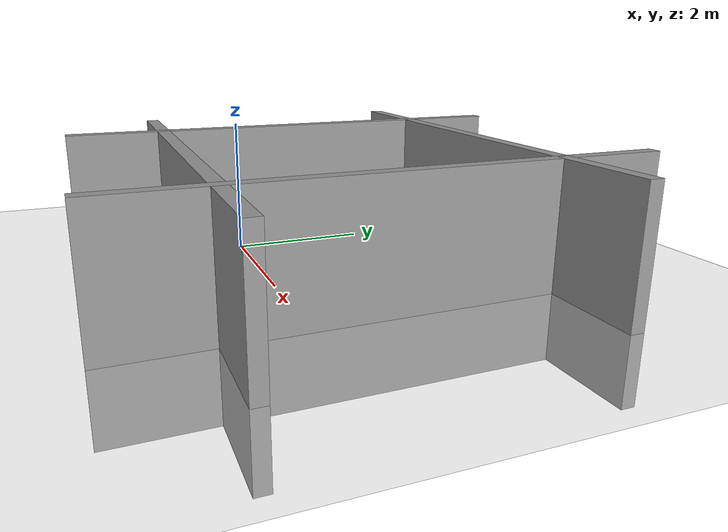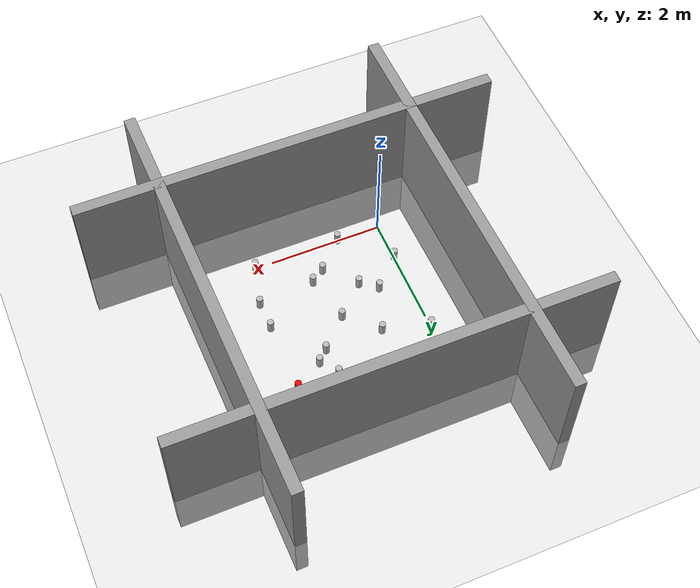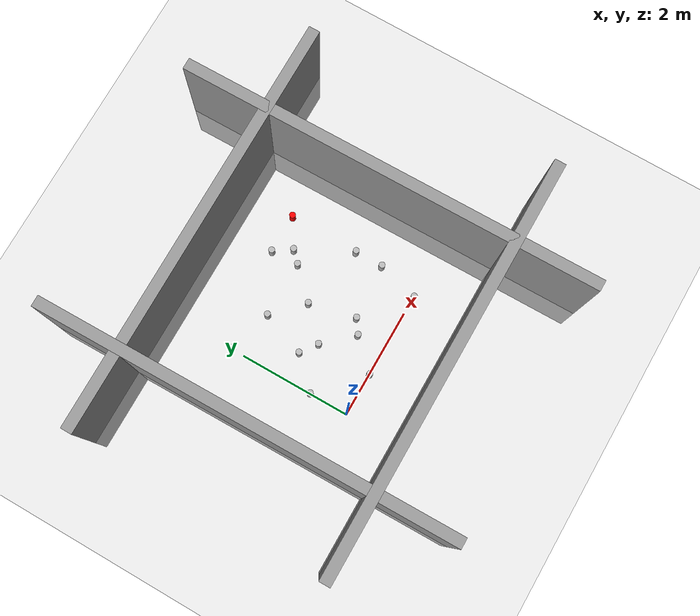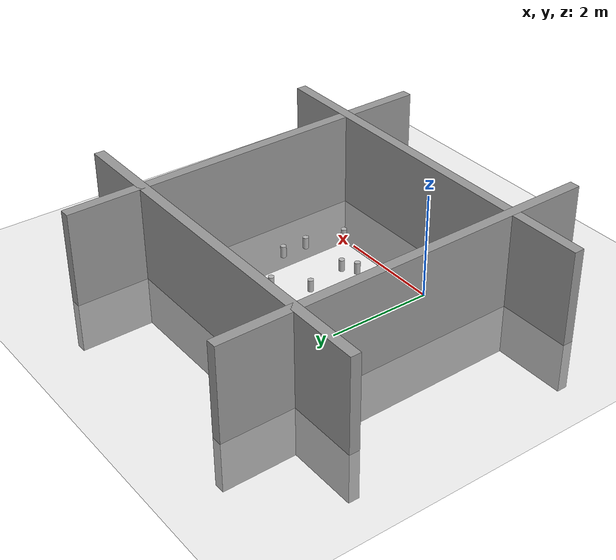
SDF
<sdf version="1.6">
 <world name="default">
  <light name="sun" type="directional">
   <pose>0 0 10 0 -0 0</pose>
   <diffuse>0.8 0.8 0.8 1</diffuse>
   <specular>0.1 0.1 0.1 1</specular>
   <attenuation>
    <range>1000</range>
    <constant>0.9</constant>
    <linear>0.01</linear>
    <quadratic>0.001</quadratic>
   </attenuation>
   <direction>-0.5 0.5 -1</direction>
  </light>
  <model name="ground_plane">
   <static>1</static>
   <link name="link">
    <collision name="collision">
     <geometry><plane><normal>0 0 1</normal><size>100 100</size></plane></geometry>
     <surface><friction><ode><mu>100</mu><mu2>50</mu2></ode></friction></surface>
    </collision>
    <visual name="visual">
     <cast_shadows>0</cast_shadows>
     <geometry><plane><normal>0 0 1</normal><size>100 100</size></plane></geometry>
     <material>
      <script><uri>file://media/materials/scripts/gazebo.material</uri><name>Gazebo/Grey</name></script>
     </material>
    </visual>
   </link>
  </model>
  <gravity>0 0 -9.8</gravity>
  <magnetic_field>6e-06 2.3e-05 -4.2e-05</magnetic_field>
  <atmosphere type="adiabatic"/>
  <physics name="default_physics" default="0" type="ode">
   <max_step_size>0.001</max_step_size>
   <real_time_factor>1</real_time_factor>
   <real_time_update_rate>1000</real_time_update_rate>
  </physics>
  <scene><ambient>0.4 0.4 0.4 1</ambient><background>0.7 0.7 0.7 1</background><shadows>1</shadows></scene>
  <spherical_coordinates>
   <surface_model>EARTH_WGS84</surface_model>
   <latitude_deg>0</latitude_deg>
   <longitude_deg>0</longitude_deg>
   <elevation>0</elevation>
   <heading_deg>0</heading_deg>
  </spherical_coordinates>
  <model name="goal">
   <link name="link">
    <pose>0 0 0.115 0 -0 0</pose>
    <inertial>
     <mass>0.0005</mass>
     <inertia><ixx>0.00058</ixx><ixy>0</ixy><ixz>0</ixz><iyy>0.00058</iyy><iyz>0</iyz><izz>0.00019</izz></inertia>
    </inertial>
    <visual name="visual">
     <geometry><cylinder><radius>0.055</radius><length>0.23</length></cylinder></geometry>
     <material>
      <script>
       <uri>model://beer/materials/scripts</uri>
       <uri>model://beer/materials/textures</uri>
       <name>Beer/Diffuse</name>
      </script>
      <ambient>1 0 0 1</ambient>
      <diffuse>1 0 0 1</diffuse>
      <specular>0 0 0 1</specular>
      <emissive>0 0 0 1</emissive>
      <shader type="vertex"><normal_map>__default__</normal_map></shader>
     </material>
    </visual>
    <collision name="collision">
     <geometry><cylinder><radius>0.055</radius><length>0.23</length></cylinder></geometry>
     <surface>
      <friction>
       <ode><mu>1</mu><mu2>1</mu2><fdir1>0 0 0</fdir1><slip1>0</slip1><slip2>0</slip2></ode>
       <torsional>
        <coefficient>1</coefficient>
        <patch_radius>0</patch_radius>
        <surface_radius>0</surface_radius>
        <use_patch_radius>1</use_patch_radius>
        <ode><slip>0</slip></ode>
       </torsional>
      </friction>
      <bounce><restitution_coefficient>0</restitution_coefficient><threshold>1e+06</threshold></bounce>
      <contact>
       <collide_without_contact>0</collide_without_contact>
       <collide_without_contact_bitmask>1</collide_without_contact_bitmask>
       <collide_bitmask>1</collide_bitmask>
       <ode>
        <soft_cfm>0</soft_cfm>
        <soft_erp>0.2</soft_erp>
        <kp>1e+13</kp>
        <kd>1</kd>
        <max_vel>0.01</max_vel>
        <min_depth>0</min_depth>
       </ode>
       <bullet>
        <split_impulse>1</split_impulse>
        <split_impulse_penetration_threshold>-0.01</split_impulse_penetration_threshold>
        <soft_cfm>0</soft_cfm>
        <soft_erp>0.2</soft_erp>
        <kp>1e+13</kp>
        <kd>1</kd>
       </bullet>
      </contact>
     </surface>
    </collision>
   </link>
   <static>0</static>
   <pose>2.5 2.5 -9e-06 -1e-06 -4e-06 0</pose>
  </model>
  <model name="wall1">
   <static>1</static>
   <link name="link">
    <pose>0 0 0.42 0 -0 0</pose>
    <collision name="collision"><geometry><box><size>7.5 0.2 2.8</size></box></geometry></collision>
    <visual name="visual">
     <cast_shadows>0</cast_shadows>
     <geometry><box><size>7.5 0.2 2.8</size></box></geometry>
     <material>
      <script>
       <uri>model://grey_wall/materials/scripts</uri>
       <uri>model://grey_wall/materials/textures</uri>
       <name>vrc/grey_wall</name>
      </script>
     </material>
    </visual>
   </link>
   <pose>-1 1.25 0 0 -0 -1.55905</pose>
  </model>
  <model name="wall2">
   <static>1</static>
   <link name="link">
    <pose>0 0 0.42 0 -0 0</pose>
    <collision name="collision"><geometry><box><size>7.5 0.2 2.8</size></box></geometry></collision>
    <visual name="visual">
     <cast_shadows>0</cast_shadows>
     <geometry><box><size>7.5 0.2 2.8</size></box></geometry>
     <material>
      <script>
       <uri>model://grey_wall/materials/scripts</uri>
       <uri>model://grey_wall/materials/textures</uri>
       <name>vrc/grey_wall</name>
      </script>
     </material>
    </visual>
   </link>
   <pose>1.25 3.5 0 0 -0 0</pose>
  </model>
  <model name="wall3">
   <static>1</static>
   <link name="link">
    <pose>0 0 0.42 0 -0 0</pose>
    <collision name="collision"><geometry><box><size>7.5 0.2 2.8</size></box></geometry></collision>
    <visual name="visual">
     <cast_shadows>0</cast_shadows>
     <geometry><box><size>7.5 0.2 2.8</size></box></geometry>
     <material>
      <script>
       <uri>model://grey_wall/materials/scripts</uri>
       <uri>model://grey_wall/materials/textures</uri>
       <name>vrc/grey_wall</name>
      </script>
     </material>
    </visual>
   </link>
   <pose>3.5 1.25 0 0 -0 -1.55905</pose>
  </model>
  <model name="wall4">
   <static>1</static>
   <link name="link">
    <pose>0 0 0.42 0 -0 0</pose>
    <collision name="collision"><geometry><box><size>7.5 0.2 2.8</size></box></geometry></collision>
    <visual name="visual">
     <cast_shadows>0</cast_shadows>
     <geometry><box><size>7.5 0.2 2.8</size></box></geometry>
     <material>
      <script>
       <uri>model://grey_wall/materials/scripts</uri>
       <uri>model://grey_wall/materials/textures</uri>
       <name>vrc/grey_wall</name>
      </script>
     </material>
    </visual>
   </link>
   <pose>1.25 -1 0 0 -0 0</pose>
  </model>
  <model name="can1.311518367991.5">
   <link name="link">
    <pose>0 0 0.115 0 -0 0</pose>
    <inertial>
     <mass>0.39</mass>
     <inertia><ixx>0.00058</ixx><ixy>0</ixy><ixz>0</ixz><iyy>0.00058</iyy><iyz>0</iyz><izz>0.00019</izz></inertia>
    </inertial>
    <collision name="collision">
     <geometry><cylinder><radius>0.055</radius><length>0.23</length></cylinder></geometry>
    </collision>
    <visual name="visual">
     <geometry><cylinder><radius>0.055</radius><length>0.23</length></cylinder></geometry>
     <material>
      <script>
       <uri>model://beer/materials/scripts</uri>
       <uri>model://beer/materials/textures</uri>
       <name>Beer/Diffuse</name>
      </script>
     </material>
    </visual>
   </link>
   <pose>1.31151836799 1.5 -2e-06 1e-06 0 -9.5e-05</pose>
  </model>
  <model name="can2.02.18873067357">
   <link name="link">
    <pose>0 0 0.115 0 -0 0</pose>
    <inertial>
     <mass>0.39</mass>
     <inertia><ixx>0.00058</ixx><ixy>0</ixy><ixz>0</ixz><iyy>0.00058</iyy><iyz>0</iyz><izz>0.00019</izz></inertia>
    </inertial>
    <collision name="collision">
     <geometry><cylinder><radius>0.055</radius><length>0.23</length></cylinder></geometry>
    </collision>
    <visual name="visual">
     <geometry><cylinder><radius>0.055</radius><length>0.23</length></cylinder></geometry>
     <material>
      <script>
       <uri>model://beer/materials/scripts</uri>
       <uri>model://beer/materials/textures</uri>
       <name>Beer/Diffuse</name>
      </script>
     </material>
    </visual>
   </link>
   <pose>2.0 2.18873067357 -2e-06 1e-06 0 -9.5e-05</pose>
  </model>
  <model name="can0.51.21046722944">
   <link name="link">
    <pose>0 0 0.115 0 -0 0</pose>
    <inertial>
     <mass>0.39</mass>
     <inertia><ixx>0.00058</ixx><ixy>0</ixy><ixz>0</ixz><iyy>0.00058</iyy><iyz>0</iyz><izz>0.00019</izz></inertia>
    </inertial>
    <collision name="collision">
     <geometry><cylinder><radius>0.055</radius><length>0.23</length></cylinder></geometry>
    </collision>
    <visual name="visual">
     <geometry><cylinder><radius>0.055</radius><length>0.23</length></cylinder></geometry>
     <material>
      <script>
       <uri>model://beer/materials/scripts</uri>
       <uri>model://beer/materials/textures</uri>
       <name>Beer/Diffuse</name>
      </script>
     </material>
    </visual>
   </link>
   <pose>0.5 1.21046722944 -2e-06 1e-06 0 -9.5e-05</pose>
  </model>
  <model name="can0.02.22798874616">
   <link name="link">
    <pose>0 0 0.115 0 -0 0</pose>
    <inertial>
     <mass>0.39</mass>
     <inertia><ixx>0.00058</ixx><ixy>0</ixy><ixz>0</ixz><iyy>0.00058</iyy><iyz>0</iyz><izz>0.00019</izz></inertia>
    </inertial>
    <collision name="collision">
     <geometry><cylinder><radius>0.055</radius><length>0.23</length></cylinder></geometry>
    </collision>
    <visual name="visual">
     <geometry><cylinder><radius>0.055</radius><length>0.23</length></cylinder></geometry>
     <material>
      <script>
       <uri>model://beer/materials/scripts</uri>
       <uri>model://beer/materials/textures</uri>
       <name>Beer/Diffuse</name>
      </script>
     </material>
    </visual>
   </link>
   <pose>0.0 2.22798874616 -2e-06 1e-06 0 -9.5e-05</pose>
  </model>
  <model name="can1.790154206242.5">
   <link name="link">
    <pose>0 0 0.115 0 -0 0</pose>
    <inertial>
     <mass>0.39</mass>
     <inertia><ixx>0.00058</ixx><ixy>0</ixy><ixz>0</ixz><iyy>0.00058</iyy><iyz>0</iyz><izz>0.00019</izz></inertia>
    </inertial>
    <collision name="collision">
     <geometry><cylinder><radius>0.055</radius><length>0.23</length></cylinder></geometry>
    </collision>
    <visual name="visual">
     <geometry><cylinder><radius>0.055</radius><length>0.23</length></cylinder></geometry>
     <material>
      <script>
       <uri>model://beer/materials/scripts</uri>
       <uri>model://beer/materials/textures</uri>
       <name>Beer/Diffuse</name>
      </script>
     </material>
    </visual>
   </link>
   <pose>1.79015420624 2.5 -2e-06 1e-06 0 -9.5e-05</pose>
  </model>
  <model name="can2.50.737276166184">
   <link name="link">
    <pose>0 0 0.115 0 -0 0</pose>
    <inertial>
     <mass>0.39</mass>
     <inertia><ixx>0.00058</ixx><ixy>0</ixy><ixz>0</ixz><iyy>0.00058</iyy><iyz>0</iyz><izz>0.00019</izz></inertia>
    </inertial>
    <collision name="collision">
     <geometry><cylinder><radius>0.055</radius><length>0.23</length></cylinder></geometry>
    </collision>
    <visual name="visual">
     <geometry><cylinder><radius>0.055</radius><length>0.23</length></cylinder></geometry>
     <material>
      <script>
       <uri>model://beer/materials/scripts</uri>
       <uri>model://beer/materials/textures</uri>
       <name>Beer/Diffuse</name>
      </script>
     </material>
    </visual>
   </link>
   <pose>2.5 0.737276166184 -2e-06 1e-06 0 -9.5e-05</pose>
  </model>
  <model name="can0.7944484413012.0">
   <link name="link">
    <pose>0 0 0.115 0 -0 0</pose>
    <inertial>
     <mass>0.39</mass>
     <inertia><ixx>0.00058</ixx><ixy>0</ixy><ixz>0</ixz><iyy>0.00058</iyy><iyz>0</iyz><izz>0.00019</izz></inertia>
    </inertial>
    <collision name="collision">
     <geometry><cylinder><radius>0.055</radius><length>0.23</length></cylinder></geometry>
    </collision>
    <visual name="visual">
     <geometry><cylinder><radius>0.055</radius><length>0.23</length></cylinder></geometry>
     <material>
      <script>
       <uri>model://beer/materials/scripts</uri>
       <uri>model://beer/materials/textures</uri>
       <name>Beer/Diffuse</name>
      </script>
     </material>
    </visual>
   </link>
   <pose>0.794448441301 2.0 -2e-06 1e-06 0 -9.5e-05</pose>
  </model>
  <model name="can0.00.704023072202">
   <link name="link">
    <pose>0 0 0.115 0 -0 0</pose>
    <inertial>
     <mass>0.39</mass>
     <inertia><ixx>0.00058</ixx><ixy>0</ixy><ixz>0</ixz><iyy>0.00058</iyy><iyz>0</iyz><izz>0.00019</izz></inertia>
    </inertial>
    <collision name="collision">
     <geometry><cylinder><radius>0.055</radius><length>0.23</length></cylinder></geometry>
    </collision>
    <visual name="visual">
     <geometry><cylinder><radius>0.055</radius><length>0.23</length></cylinder></geometry>
     <material>
      <script>
       <uri>model://beer/materials/scripts</uri>
       <uri>model://beer/materials/textures</uri>
       <name>Beer/Diffuse</name>
      </script>
     </material>
    </visual>
   </link>
   <pose>0.0 0.704023072202 -2e-06 1e-06 0 -9.5e-05</pose>
  </model>
  <model name="can2.51.24374151113">
   <link name="link">
    <pose>0 0 0.115 0 -0 0</pose>
    <inertial>
     <mass>0.39</mass>
     <inertia><ixx>0.00058</ixx><ixy>0</ixy><ixz>0</ixz><iyy>0.00058</iyy><iyz>0</iyz><izz>0.00019</izz></inertia>
    </inertial>
    <collision name="collision">
     <geometry><cylinder><radius>0.055</radius><length>0.23</length></cylinder></geometry>
    </collision>
    <visual name="visual">
     <geometry><cylinder><radius>0.055</radius><length>0.23</length></cylinder></geometry>
     <material>
      <script>
       <uri>model://beer/materials/scripts</uri>
       <uri>model://beer/materials/textures</uri>
       <name>Beer/Diffuse</name>
      </script>
     </material>
    </visual>
   </link>
   <pose>2.5 1.24374151113 -2e-06 1e-06 0 -9.5e-05</pose>
  </model>
  <model name="can1.807581573262.0">
   <link name="link">
    <pose>0 0 0.115 0 -0 0</pose>
    <inertial>
     <mass>0.39</mass>
     <inertia><ixx>0.00058</ixx><ixy>0</ixy><ixz>0</ixz><iyy>0.00058</iyy><iyz>0</iyz><izz>0.00019</izz></inertia>
    </inertial>
    <collision name="collision">
     <geometry><cylinder><radius>0.055</radius><length>0.23</length></cylinder></geometry>
    </collision>
    <visual name="visual">
     <geometry><cylinder><radius>0.055</radius><length>0.23</length></cylinder></geometry>
     <material>
      <script>
       <uri>model://beer/materials/scripts</uri>
       <uri>model://beer/materials/textures</uri>
       <name>Beer/Diffuse</name>
      </script>
     </material>
    </visual>
   </link>
   <pose>1.80758157326 2.0 -2e-06 1e-06 0 -9.5e-05</pose>
  </model>
  <model name="can0.7740163140330.0">
   <link name="link">
    <pose>0 0 0.115 0 -0 0</pose>
    <inertial>
     <mass>0.39</mass>
     <inertia><ixx>0.00058</ixx><ixy>0</ixy><ixz>0</ixz><iyy>0.00058</iyy><iyz>0</iyz><izz>0.00019</izz></inertia>
    </inertial>
    <collision name="collision">
     <geometry><cylinder><radius>0.055</radius><length>0.23</length></cylinder></geometry>
    </collision>
    <visual name="visual">
     <geometry><cylinder><radius>0.055</radius><length>0.23</length></cylinder></geometry>
     <material>
      <script>
       <uri>model://beer/materials/scripts</uri>
       <uri>model://beer/materials/textures</uri>
       <name>Beer/Diffuse</name>
      </script>
     </material>
    </visual>
   </link>
   <pose>0.774016314033 0.0 -2e-06 1e-06 0 -9.5e-05</pose>
  </model>
  <model name="can2.30359641110.0">
   <link name="link">
    <pose>0 0 0.115 0 -0 0</pose>
    <inertial>
     <mass>0.39</mass>
     <inertia><ixx>0.00058</ixx><ixy>0</ixy><ixz>0</ixz><iyy>0.00058</iyy><iyz>0</iyz><izz>0.00019</izz></inertia>
    </inertial>
    <collision name="collision">
     <geometry><cylinder><radius>0.055</radius><length>0.23</length></cylinder></geometry>
    </collision>
    <visual name="visual">
     <geometry><cylinder><radius>0.055</radius><length>0.23</length></cylinder></geometry>
     <material>
      <script>
       <uri>model://beer/materials/scripts</uri>
       <uri>model://beer/materials/textures</uri>
       <name>Beer/Diffuse</name>
      </script>
     </material>
    </visual>
   </link>
   <pose>2.3035964111 0.0 -2e-06 1e-06 0 -9.5e-05</pose>
  </model>
  <model name="can1.257500355170.5">
   <link name="link">
    <pose>0 0 0.115 0 -0 0</pose>
    <inertial>
     <mass>0.39</mass>
     <inertia><ixx>0.00058</ixx><ixy>0</ixy><ixz>0</ixz><iyy>0.00058</iyy><iyz>0</iyz><izz>0.00019</izz></inertia>
    </inertial>
    <collision name="collision">
     <geometry><cylinder><radius>0.055</radius><length>0.23</length></cylinder></geometry>
    </collision>
    <visual name="visual">
     <geometry><cylinder><radius>0.055</radius><length>0.23</length></cylinder></geometry>
     <material>
      <script>
       <uri>model://beer/materials/scripts</uri>
       <uri>model://beer/materials/textures</uri>
       <name>Beer/Diffuse</name>
      </script>
     </material>
    </visual>
   </link>
   <pose>1.25750035517 0.5 -2e-06 1e-06 0 -9.5e-05</pose>
  </model>
  <model name="can1.50.666196311434">
   <link name="link">
    <pose>0 0 0.115 0 -0 0</pose>
    <inertial>
     <mass>0.39</mass>
     <inertia><ixx>0.00058</ixx><ixy>0</ixy><ixz>0</ixz><iyy>0.00058</iyy><iyz>0</iyz><izz>0.00019</izz></inertia>
    </inertial>
    <collision name="collision">
     <geometry><cylinder><radius>0.055</radius><length>0.23</length></cylinder></geometry>
    </collision>
    <visual name="visual">
     <geometry><cylinder><radius>0.055</radius><length>0.23</length></cylinder></geometry>
     <material>
      <script>
       <uri>model://beer/materials/scripts</uri>
       <uri>model://beer/materials/textures</uri>
       <name>Beer/Diffuse</name>
      </script>
     </material>
    </visual>
   </link>
   <pose>1.5 0.666196311434 -2e-06 1e-06 0 -9.5e-05</pose>
  </model>
  <model name="can0.7897701743131.0">
   <link name="link">
    <pose>0 0 0.115 0 -0 0</pose>
    <inertial>
     <mass>0.39</mass>
     <inertia><ixx>0.00058</ixx><ixy>0</ixy><ixz>0</ixz><iyy>0.00058</iyy><iyz>0</iyz><izz>0.00019</izz></inertia>
    </inertial>
    <collision name="collision">
     <geometry><cylinder><radius>0.055</radius><length>0.23</length></cylinder></geometry>
    </collision>
    <visual name="visual">
     <geometry><cylinder><radius>0.055</radius><length>0.23</length></cylinder></geometry>
     <material>
      <script>
       <uri>model://beer/materials/scripts</uri>
       <uri>model://beer/materials/textures</uri>
       <name>Beer/Diffuse</name>
      </script>
     </material>
    </visual>
   </link>
   <pose>0.789770174313 1.0 -2e-06 1e-06 0 -9.5e-05</pose>
  </model>
 </world>
</sdf>
